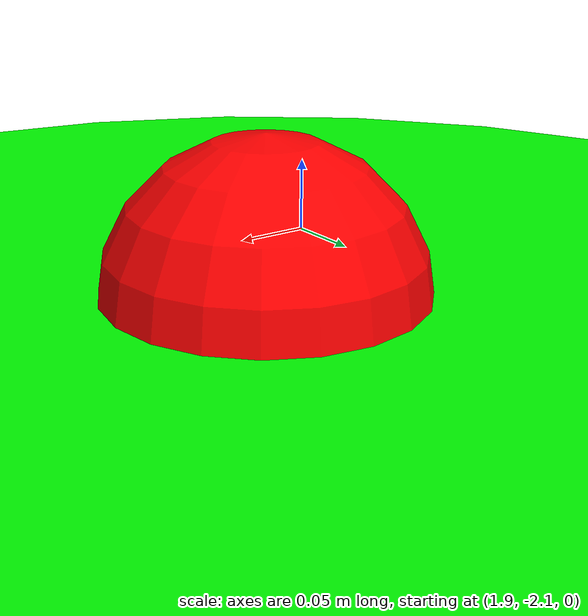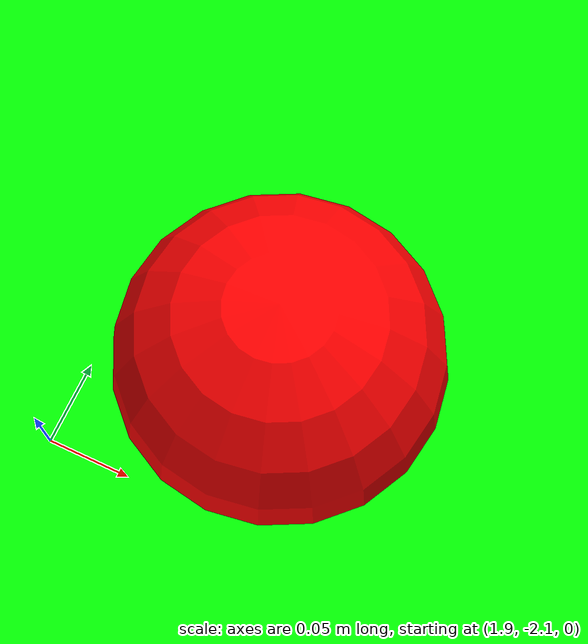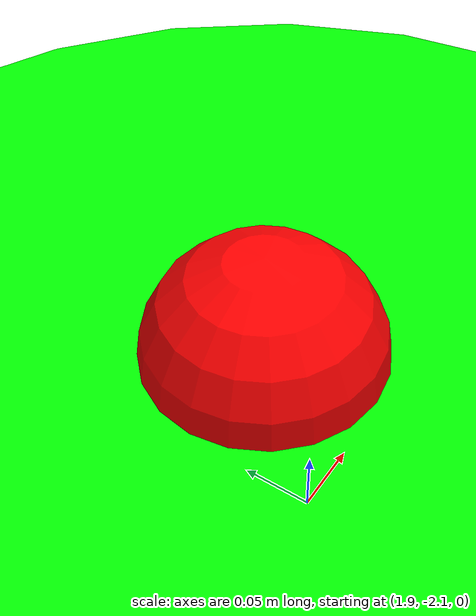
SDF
<?xml version='1.0' ?>
<sdf version='1.7'>
  <world name='default'>
    <light name='sun' type='directional'>
      <cast_shadows>1</cast_shadows>
      <pose>0 0 10 0 -0 0</pose>
      <diffuse>0.8 0.8 0.8 1</diffuse>
      <specular>0.2 0.2 0.2 1</specular>
      <attenuation>
        <range>1000</range>
        <constant>0.9</constant>
        <linear>0.01</linear>
        <quadratic>0.001</quadratic>
      </attenuation>
      <direction>-0.5 0.1 -0.9</direction>
      <spot>
        <inner_angle>0</inner_angle>
        <outer_angle>0</outer_angle>
        <falloff>0</falloff>
      </spot>
    </light>

    <model name='ground_plane'>
      <static>1</static>
      <link name='link'>
        <collision name='collision'>
          <geometry>
            <plane>
              <normal>0 0 1</normal>
              <size>100 100</size>
            </plane>
          </geometry>
        </collision>
        <visual name='visual'>
          <geometry>
            <plane>
              <normal>0 0 1</normal>
              <size>100 100</size>
            </plane>
          </geometry>
          <material>
            <script>
              <uri>file://media/materials/scripts/gazebo.material</uri>
              <name>Gazebo/Grey</name>
            </script>
          </material>
        </visual>
      </link>
    </model>

    <model name='unit_cylinder_1'>
      <pose>2 -2 0 0 -0 0</pose>
      <scale>1.06716 1.06716 0.028059</scale>
      <link name='link'>
        <inertial>
          <mass>1</mass>
          <inertia>
            <ixx>0.145833</ixx>
            <ixy>0</ixy>
            <ixz>0</ixz>
            <iyy>0.145833</iyy>
            <iyz>0</iyz>
            <izz>0.125</izz>
          </inertia>
          <pose>0 0 0 0 -0 0</pose>
        </inertial>
        <collision name='collision'>
          <geometry>
            <cylinder>
              <radius>0.5</radius>
              <length>0.01</length>
            </cylinder>
          </geometry>
        </collision>
        <visual name='visual'>
          <geometry>
            <cylinder>
              <radius>0.5</radius>
              <length>0.011</length>
            </cylinder>
          </geometry>
          <material>
            <ambient>0 1 0 1</ambient>
            <diffuse>0 1 0 1</diffuse>
            <specular>0 1 0 1</specular>
            <emissive>0 1 0 1</emissive>
          </material>
        </visual>
      </link>
    </model>

    <!-- 目标点模型 -->
    <model name='goal_point'>
      <pose>2 -2 0 0 -0 0</pose>
      <link name='link'>
        <visual name='visual'>
          <geometry>
            <sphere>
              <radius>0.1</radius>
            </sphere>
          </geometry>
          <material>
            <ambient>1 0 0 1</ambient>
            <diffuse>1 0 0 1</diffuse>
            <specular>1 0 0 1</specular>
            <emissive>1 0 0 1</emissive>
          </material>
        </visual>
      </link>
    </model>

    <gravity>0 0 -9.8</gravity>
    <magnetic_field>6e-06 2.3e-05 -4.2e-05</magnetic_field>
    <atmosphere type='adiabatic'/>
    <physics type='ode'>
      <max_step_size>0.001</max_step_size>
      <real_time_factor>1</real_time_factor>
      <real_time_update_rate>1000</real_time_update_rate>
    </physics>
    <scene>
      <ambient>0.4 0.4 0.4 1</ambient>
      <background>0.7 0.7 0.7 1</background>
      <shadows>1</shadows>
    </scene>
    <wind/>
    <spherical_coordinates>
      <surface_model>EARTH_WGS84</surface_model>
      <latitude_deg>0</latitude_deg>
      <longitude_deg>0</longitude_deg>
      <elevation>0</elevation>
      <heading_deg>0</heading_deg>
    </spherical_coordinates>

    <gui fullscreen='0'>
      <camera name='user_camera'>
        <pose>27.1676 -5.60429 7.76928 0 0.084253 2.94853</pose>
        <view_controller>orbit</view_controller>
        <projection_type>perspective</projection_type>
      </camera>
    </gui>
  </world>
</sdf>
